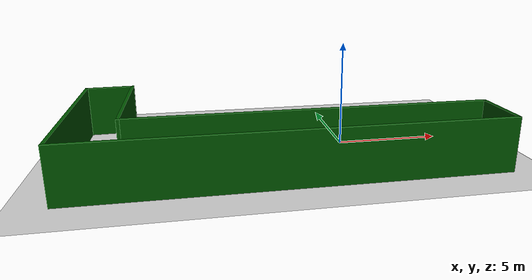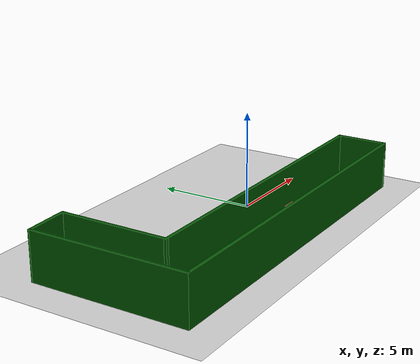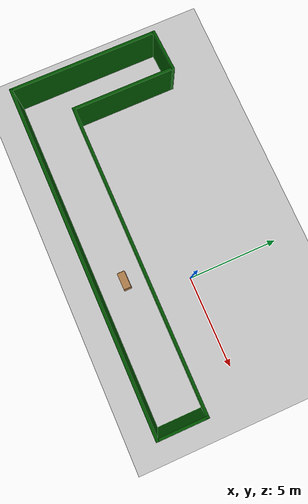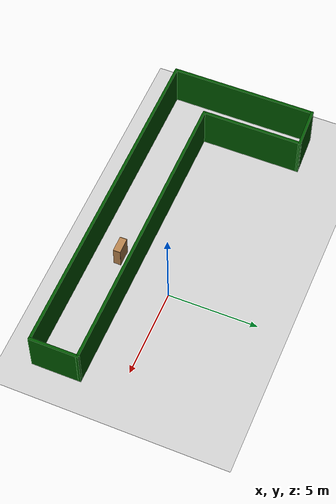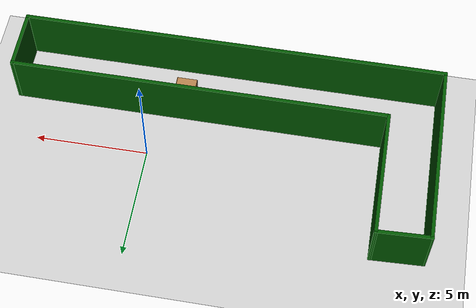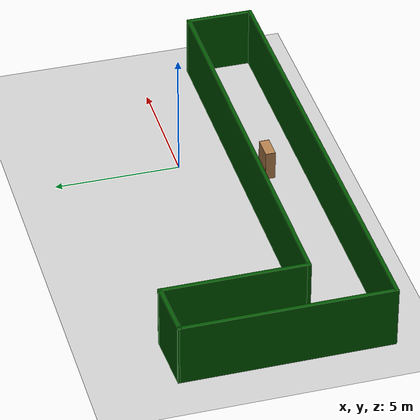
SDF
<sdf version="1.6">
 <world name="default">
  <light name="sun" type="directional">
   <pose>0 0 10 0 -0 0</pose>
   <diffuse>0.8 0.8 0.8 1</diffuse>
   <specular>0.2 0.2 0.2 1</specular>
   <attenuation>
    <range>1000</range>
    <constant>0.9</constant>
    <linear>0.01</linear>
    <quadratic>0.001</quadratic>
   </attenuation>
   <direction>-0.5 0.1 -0.9</direction>
  </light>
  <model name="ground_plane">
   <static>1</static>
   <link name="link">
    <collision name="collision">
     <geometry><plane><normal>0 0 1</normal><size>100 100</size></plane></geometry>
     <surface>
      <contact><collide_bitmask>65535</collide_bitmask></contact>
      <friction><ode><mu>100</mu><mu2>50</mu2></ode></friction>
     </surface>
    </collision>
    <visual name="visual">
     <cast_shadows>0</cast_shadows>
     <geometry><plane><normal>0 0 1</normal><size>100 100</size></plane></geometry>
     <material>
      <script><uri>file://media/materials/scripts/gazebo.material</uri><name>Gazebo/Grey</name></script>
     </material>
    </visual>
   </link>
  </model>
  <gravity>0 0 -9.8</gravity>
  <magnetic_field>6e-06 2.3e-05 -4.2e-05</magnetic_field>
  <atmosphere type="adiabatic"/>
  <physics name="default_physics" default="0" type="ode">
   <max_step_size>0.001</max_step_size>
   <real_time_factor>1</real_time_factor>
   <real_time_update_rate>1000</real_time_update_rate>
  </physics>
  <scene><ambient>0.4 0.4 0.4 1</ambient><background>0.7 0.7 0.7 1</background><shadows>1</shadows></scene>
  <spherical_coordinates>
   <surface_model>EARTH_WGS84</surface_model>
   <latitude_deg>0</latitude_deg>
   <longitude_deg>0</longitude_deg>
   <elevation>0</elevation>
   <heading_deg>0</heading_deg>
  </spherical_coordinates>
  <model name="Untitled">
   <model name="Untitled">
    <pose>2e-06 -0 0 0 -0 0</pose>
    <link name="Wall_0">
     <collision name="Wall_0_Collision">
      <geometry><box><size>8.25 0.15 2.5</size></box></geometry>
      <pose>0 0 1.25 0 -0 0</pose>
     </collision>
     <visual name="Wall_0_Visual">
      <pose>0 0 1.25 0 -0 0</pose>
      <geometry><box><size>8.25 0.15 2.5</size></box></geometry>
      <material>
       <script><uri>file://media/materials/scripts/gazebo.material</uri><name>Gazebo/Grey</name></script>
       <ambient>0 0.333333 0 1</ambient>
      </material>
      <meta><layer>0</layer></meta>
     </visual>
     <pose>-9.42337 -0.051628 0 0 0 -1.5708</pose>
    </link>
    <link name="Wall_1">
     <collision name="Wall_1_Collision">
      <geometry><box><size>19 0.15 2.5</size></box></geometry>
      <pose>0 0 1.25 0 -0 0</pose>
     </collision>
     <visual name="Wall_1_Visual">
      <pose>0 0 1.25 0 -0 0</pose>
      <geometry><box><size>19 0.15 2.5</size></box></geometry>
      <material>
       <script><uri>file://media/materials/scripts/gazebo.material</uri><name>Gazebo/Grey</name></script>
       <ambient>0 0.333333 0 1</ambient>
      </material>
      <meta><layer>0</layer></meta>
     </visual>
     <pose>0.001628 -4.10163 0 0 -0 0</pose>
    </link>
    <link name="Wall_2">
     <collision name="Wall_2_Collision">
      <geometry><box><size>2.75 0.15 2.5</size></box></geometry>
      <pose>0 0 1.25 0 -0 0</pose>
     </collision>
     <visual name="Wall_2_Visual">
      <pose>0 0 1.25 0 -0 0</pose>
      <geometry><box><size>2.75 0.15 2.5</size></box></geometry>
      <material>
       <script><uri>file://media/materials/scripts/gazebo.material</uri><name>Gazebo/Grey</name></script>
       <ambient>0 0.333333 0 1</ambient>
      </material>
      <meta><layer>0</layer></meta>
     </visual>
     <pose>9.42663 -2.80163 0 0 -0 1.5708</pose>
    </link>
    <link name="Wall_3">
     <collision name="Wall_3_Collision">
      <geometry><box><size>16.75 0.15 2.5</size></box></geometry>
      <pose>0 0 1.25 0 -0 0</pose>
     </collision>
     <visual name="Wall_3_Visual">
      <pose>0 0 1.25 0 -0 0</pose>
      <geometry><box><size>16.75 0.15 2.5</size></box></geometry>
      <material>
       <script><uri>file://media/materials/scripts/gazebo.material</uri><name>Gazebo/Grey</name></script>
       <ambient>0 0.333333 0 1</ambient>
      </material>
      <meta><layer>0</layer></meta>
     </visual>
     <pose>1.12663 -1.50163 0 0 -0 3.14159</pose>
    </link>
    <link name="Wall_4">
     <collision name="Wall_4_Collision">
      <geometry><box><size>5.75 0.15 2.5</size></box></geometry>
      <pose>0 0 1.25 0 -0 0</pose>
     </collision>
     <visual name="Wall_4_Visual">
      <pose>0 0 1.25 0 -0 0</pose>
      <geometry><box><size>5.75 0.15 2.5</size></box></geometry>
      <material>
       <script><uri>file://media/materials/scripts/gazebo.material</uri><name>Gazebo/Grey</name></script>
       <ambient>0 0.333333 0 1</ambient>
      </material>
      <meta><layer>0</layer></meta>
     </visual>
     <pose>-7.17337 1.29837 0 0 -0 1.5708</pose>
    </link>
    <link name="Wall_5">
     <collision name="Wall_5_Collision">
      <geometry><box><size>2.40222 0.15 2.5</size></box></geometry>
      <pose>0 0 1.25 0 -0 0</pose>
     </collision>
     <visual name="Wall_5_Visual">
      <pose>0 0 1.25 0 -0 0</pose>
      <geometry><box><size>2.40222 0.15 2.5</size></box></geometry>
      <material>
       <script><uri>file://media/materials/scripts/gazebo.material</uri><name>Gazebo/Grey</name></script>
       <ambient>0 0.333333 0 1</ambient>
      </material>
      <meta><layer>0</layer></meta>
     </visual>
     <pose>-8.29837 4.04837 0 0 0 -3.09718</pose>
    </link>
    <static>1</static>
   </model>
   <static>0</static>
   <pose>-3.08353 -0.642491 0 0 -0 0</pose>
  </model>
  <model name="bookshelf">
   <static>1</static>
   <link name="link">
    <inertial><mass>1</mass></inertial>
    <collision name="back">
     <pose>0 0.005 0.6 0 -0 0</pose>
     <geometry><box><size>0.9 0.01 1.2</size></box></geometry>
    </collision>
    <visual name="visual1">
     <pose>0 0.005 0.6 0 -0 0</pose>
     <geometry><box><size>0.9 0.01 1.2</size></box></geometry>
     <material>
      <script><uri>file://media/materials/scripts/gazebo.material</uri><name>Gazebo/Wood</name></script>
     </material>
    </visual>
    <collision name="left_side">
     <pose>0.45 -0.195 0.6 0 -0 0</pose>
     <geometry><box><size>0.02 0.4 1.2</size></box></geometry>
    </collision>
    <visual name="visual2">
     <pose>0.45 -0.195 0.6 0 -0 0</pose>
     <geometry><box><size>0.02 0.4 1.2</size></box></geometry>
     <material>
      <script><uri>file://media/materials/scripts/gazebo.material</uri><name>Gazebo/Wood</name></script>
     </material>
    </visual>
    <collision name="right_side">
     <pose>-0.45 -0.195 0.6 0 -0 0</pose>
     <geometry><box><size>0.02 0.4 1.2</size></box></geometry>
    </collision>
    <visual name="visual3">
     <pose>-0.45 -0.195 0.6 0 -0 0</pose>
     <geometry><box><size>0.02 0.4 1.2</size></box></geometry>
     <material>
      <script><uri>file://media/materials/scripts/gazebo.material</uri><name>Gazebo/Wood</name></script>
     </material>
    </visual>
    <collision name="bottom">
     <pose>0 -0.195 0.03 0 -0 0</pose>
     <geometry><box><size>0.88 0.4 0.06</size></box></geometry>
    </collision>
    <visual name="visual4">
     <pose>0 -0.195 0.03 0 -0 0</pose>
     <geometry><box><size>0.88 0.4 0.06</size></box></geometry>
     <material>
      <script><uri>file://media/materials/scripts/gazebo.material</uri><name>Gazebo/Wood</name></script>
     </material>
    </visual>
    <collision name="top">
     <pose>0 -0.195 1.19 0 -0 0</pose>
     <geometry><box><size>0.88 0.4 0.02</size></box></geometry>
    </collision>
    <visual name="visual5">
     <pose>0 -0.195 1.19 0 -0 0</pose>
     <geometry><box><size>0.88 0.4 0.02</size></box></geometry>
     <material>
      <script><uri>file://media/materials/scripts/gazebo.material</uri><name>Gazebo/Wood</name></script>
     </material>
    </visual>
    <collision name="low_shelf">
     <pose>0 -0.195 0.43 0 -0 0</pose>
     <geometry><box><size>0.88 0.4 0.02</size></box></geometry>
    </collision>
    <visual name="visual6">
     <pose>0 -0.195 0.43 0 -0 0</pose>
     <geometry><box><size>0.88 0.4 0.02</size></box></geometry>
     <material>
      <script><uri>file://media/materials/scripts/gazebo.material</uri><name>Gazebo/Wood</name></script>
     </material>
    </visual>
    <collision name="high_shelf">
     <pose>0 -0.195 0.8 0 -0 0</pose>
     <geometry><box><size>0.88 0.4 0.02</size></box></geometry>
    </collision>
    <visual name="visual7">
     <pose>0 -0.195 0.8 0 -0 0</pose>
     <geometry><box><size>0.88 0.4 0.02</size></box></geometry>
     <material>
      <script><uri>file://media/materials/scripts/gazebo.material</uri><name>Gazebo/Wood</name></script>
     </material>
    </visual>
   </link>
   <pose>-1.21936 -3.06673 0 0 -0 0.002916</pose>
  </model>
 </world>
</sdf>
